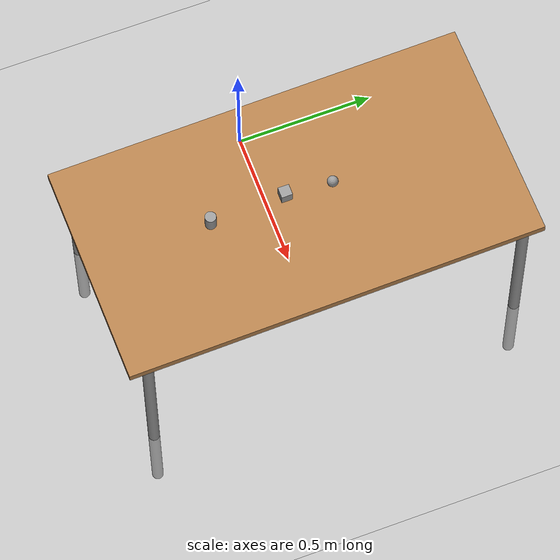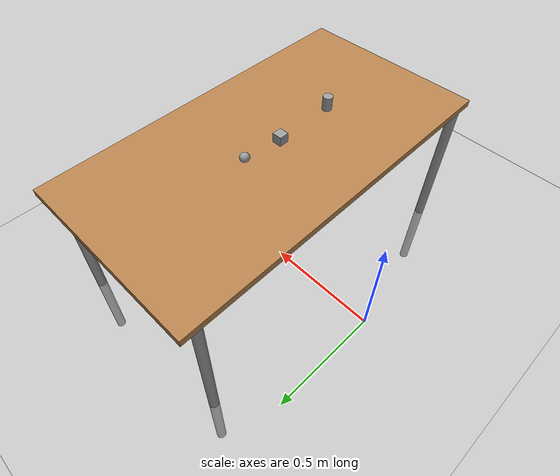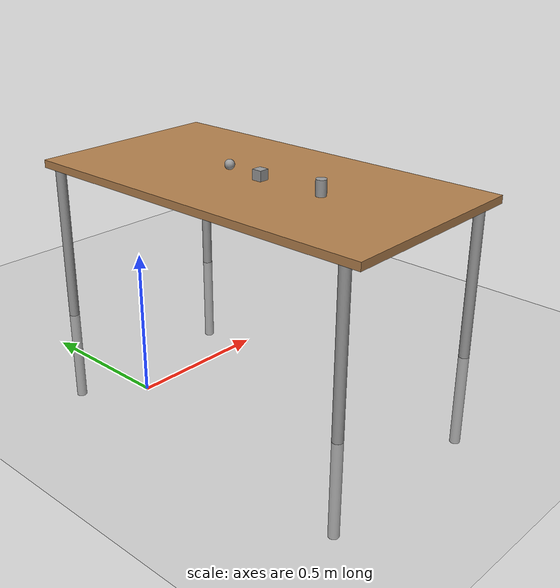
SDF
<sdf version="1.6">
 <world name="default">
  <light name="sun" type="directional">
   <pose>0 0 10 0 -0 0</pose>
   <diffuse>0.8 0.8 0.8 1</diffuse>
   <specular>0.2 0.2 0.2 1</specular>
   <attenuation>
    <range>1000</range>
    <constant>0.9</constant>
    <linear>0.01</linear>
    <quadratic>0.001</quadratic>
   </attenuation>
   <direction>-0.5 0.1 -0.9</direction>
  </light>
  <model name="ground_plane">
   <static>1</static>
   <link name="link">
    <collision name="collision">
     <geometry><plane><normal>0 0 1</normal><size>100 100</size></plane></geometry>
     <surface>
      <contact><collide_bitmask>65535</collide_bitmask></contact>
      <friction><ode><mu>100</mu><mu2>50</mu2></ode></friction>
     </surface>
    </collision>
    <visual name="visual">
     <cast_shadows>0</cast_shadows>
     <geometry><plane><normal>0 0 1</normal><size>100 100</size></plane></geometry>
     <material>
      <script><uri>file://media/materials/scripts/gazebo.material</uri><name>Gazebo/Grey</name></script>
     </material>
    </visual>
   </link>
  </model>
  <gravity>0 0 -9.8</gravity>
  <magnetic_field>6e-06 2.3e-05 -4.2e-05</magnetic_field>
  <atmosphere type="adiabatic"/>
  <physics name="default_physics" default="0" type="ode">
   <max_step_size>0.001</max_step_size>
   <real_time_factor>1</real_time_factor>
   <real_time_update_rate>1000</real_time_update_rate>
  </physics>
  <scene><ambient>0.4 0.4 0.4 1</ambient><background>0.7 0.7 0.7 1</background><shadows>1</shadows></scene>
  <spherical_coordinates>
   <surface_model>EARTH_WGS84</surface_model>
   <latitude_deg>0</latitude_deg>
   <longitude_deg>0</longitude_deg>
   <elevation>0</elevation>
   <heading_deg>0</heading_deg>
  </spherical_coordinates>
  <model name="table">
   <static>1</static>
   <link name="link">
    <collision name="surface">
     <pose>0 0 1 0 -0 0</pose>
     <geometry><box><size>1.5 0.8 0.03</size></box></geometry>
     <surface><friction><ode><mu>0.6</mu><mu2>0.6</mu2></ode></friction></surface>
    </collision>
    <visual name="visual1">
     <pose>0 0 1 0 -0 0</pose>
     <geometry><box><size>1.5 0.8 0.03</size></box></geometry>
     <material>
      <script><uri>file://media/materials/scripts/gazebo.material</uri><name>Gazebo/Wood</name></script>
     </material>
    </visual>
    <collision name="front_left_leg">
     <pose>0.68 0.38 0.5 0 -0 0</pose>
     <geometry><cylinder><radius>0.02</radius><length>1</length></cylinder></geometry>
    </collision>
    <visual name="front_left_leg">
     <pose>0.68 0.38 0.5 0 -0 0</pose>
     <geometry><cylinder><radius>0.02</radius><length>1</length></cylinder></geometry>
     <material>
      <script><uri>file://media/materials/scripts/gazebo.material</uri><name>Gazebo/Grey</name></script>
     </material>
    </visual>
    <collision name="front_right_leg">
     <pose>0.68 -0.38 0.5 0 -0 0</pose>
     <geometry><cylinder><radius>0.02</radius><length>1</length></cylinder></geometry>
    </collision>
    <visual name="front_right_leg">
     <pose>0.68 -0.38 0.5 0 -0 0</pose>
     <geometry><cylinder><radius>0.02</radius><length>1</length></cylinder></geometry>
     <material>
      <script><uri>file://media/materials/scripts/gazebo.material</uri><name>Gazebo/Grey</name></script>
     </material>
    </visual>
    <collision name="back_right_leg">
     <pose>-0.68 -0.38 0.5 0 -0 0</pose>
     <geometry><cylinder><radius>0.02</radius><length>1</length></cylinder></geometry>
    </collision>
    <visual name="back_right_leg">
     <pose>-0.68 -0.38 0.5 0 -0 0</pose>
     <geometry><cylinder><radius>0.02</radius><length>1</length></cylinder></geometry>
     <material>
      <script><uri>file://media/materials/scripts/gazebo.material</uri><name>Gazebo/Grey</name></script>
     </material>
    </visual>
    <collision name="back_left_leg">
     <pose>-0.68 0.38 0.5 0 -0 0</pose>
     <geometry><cylinder><radius>0.02</radius><length>1</length></cylinder></geometry>
    </collision>
    <visual name="back_left_leg">
     <pose>-0.68 0.38 0.5 0 -0 0</pose>
     <geometry><cylinder><radius>0.02</radius><length>1</length></cylinder></geometry>
     <material>
      <script><uri>file://media/materials/scripts/gazebo.material</uri><name>Gazebo/Grey</name></script>
     </material>
    </visual>
   </link>
   <pose>0.572508 -3.2e-05 -0.378321 0 0 -1.55556</pose>
  </model>
  <model name="unit_cylinder">
   <pose>0.554415 -0.299725 0.666677 -4.8e-05 -0.000135 -0.036761</pose>
   <link name="unit_cylinder::unit_cylinder::unit_cylinder::unit_cylinder::link">
    <inertial>
     <mass>5e-05</mass>
     <inertia><ixx>2e-08</ixx><ixy>0</ixy><ixz>0</ixz><iyy>2e-08</iyy><iyz>0</iyz><izz>1e-08</izz></inertia>
    </inertial>
    <collision name="collision">
     <geometry><cylinder><radius>0.02</radius><length>0.06</length></cylinder></geometry>
    </collision>
    <visual name="visual">
     <geometry><cylinder><radius>0.02</radius><length>0.06</length></cylinder></geometry>
     <material>
      <script><name>Gazebo/Grey</name><uri>file://media/materials/scripts/gazebo.material</uri></script>
     </material>
    </visual>
   </link>
  </model>
  <model name="unit_sphere">
   <link name="unit_sphere::unit_sphere::unit_sphere::unit_sphere::link">
    <pose>0 0 0.02 0 -0 0</pose>
    <inertial>
     <mass>5e-05</mass>
     <inertia>
      <ixx>7.70595e-09</ixx>
      <ixy>0</ixy>
      <ixz>0</ixz>
      <iyy>7.70595e-09</iyy>
      <iyz>0</iyz>
      <izz>7.70595e-09</izz>
     </inertia>
    </inertial>
    <visual name="visual">
     <geometry><sphere><radius>0.019629</radius></sphere></geometry>
     <material>
      <script><name>Gazebo/Grey</name><uri>file://media/materials/scripts/gazebo.material</uri></script>
      <shader type="pixel"><normal_map>__default__</normal_map></shader>
      <ambient>0.3 0.3 0.3 1</ambient>
      <diffuse>0.7 0.7 0.7 1</diffuse>
      <specular>0.01 0.01 0.01 1</specular>
      <emissive>0 0 0 1</emissive>
     </material>
    </visual>
    <collision name="collision">
     <geometry><sphere><radius>0.019629</radius></sphere></geometry>
     <surface>
      <friction>
       <ode><mu>1</mu><mu2>1</mu2><fdir1>0 0 0</fdir1><slip1>0</slip1><slip2>0</slip2></ode>
       <torsional>
        <coefficient>1</coefficient>
        <patch_radius>0</patch_radius>
        <surface_radius>0</surface_radius>
        <use_patch_radius>1</use_patch_radius>
        <ode><slip>0</slip></ode>
       </torsional>
      </friction>
      <bounce><restitution_coefficient>0</restitution_coefficient><threshold>1e+06</threshold></bounce>
      <contact>
       <collide_without_contact>0</collide_without_contact>
       <collide_without_contact_bitmask>1</collide_without_contact_bitmask>
       <collide_bitmask>1</collide_bitmask>
       <ode>
        <soft_cfm>0</soft_cfm>
        <soft_erp>0.2</soft_erp>
        <kp>1e+13</kp>
        <kd>1</kd>
        <max_vel>0.01</max_vel>
        <min_depth>0</min_depth>
       </ode>
       <bullet>
        <split_impulse>1</split_impulse>
        <split_impulse_penetration_threshold>-0.01</split_impulse_penetration_threshold>
        <soft_cfm>0</soft_cfm>
        <soft_erp>0.2</soft_erp>
        <kp>1e+13</kp>
        <kd>1</kd>
       </bullet>
      </contact>
     </surface>
    </collision>
   </link>
   <static>0</static>
   <pose>0.557472 0.140118 0.636308 0 -0 0</pose>
  </model>
  <model name="unit_box_clone">
   <pose>0.544294 -0.027158 0.656672 4.9e-05 -8.2e-05 0.002218</pose>
   <link name="unit_box_clone::unit_box_clone::unit_box_clone::unit_box_clone::link">
    <inertial>
     <mass>5e-05</mass>
     <inertia>
      <ixx>1.33333e-08</ixx>
      <ixy>0</ixy>
      <ixz>0</ixz>
      <iyy>1.33333e-08</iyy>
      <iyz>0</iyz>
      <izz>1.33333e-08</izz>
     </inertia>
    </inertial>
    <collision name="collision"><geometry><box><size>0.04 0.04 0.04</size></box></geometry></collision>
    <visual name="visual">
     <geometry><box><size>0.04 0.04 0.04</size></box></geometry>
     <material>
      <script><name>Gazebo/Grey</name><uri>file://media/materials/scripts/gazebo.material</uri></script>
     </material>
    </visual>
   </link>
  </model>
 </world>
</sdf>
